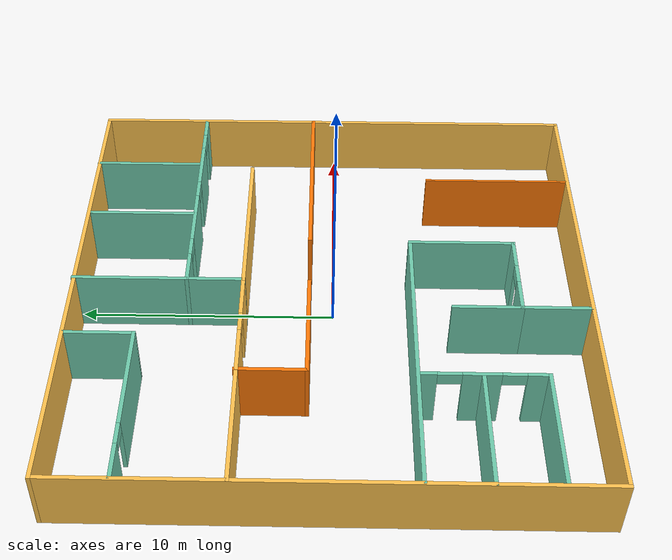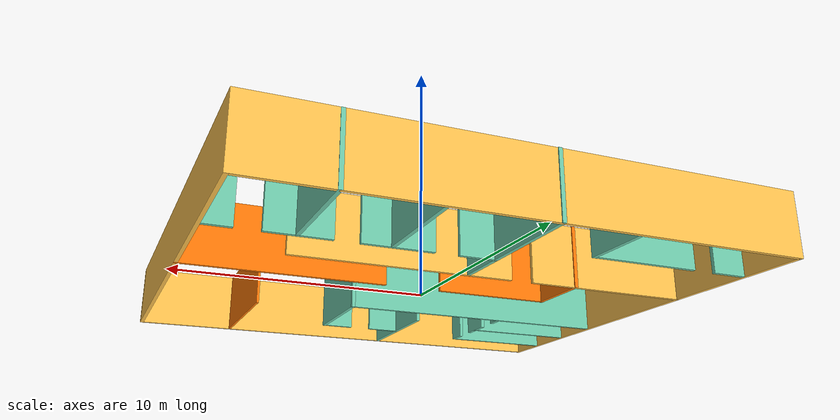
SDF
<?xml version='1.0'?>
<sdf version='1.6'>
  <model name='small_office'>
    <pose frame=''>-0.114 0.133313 0 0 -0 0</pose>
    <link name='Wall_11'>
      <collision name='Wall_11_Collision'>
        <geometry>
          <box>
            <size>20 0.15 2.5</size>
          </box>
        </geometry>
        <pose frame=''>0 0 1.25 0 -0 0</pose>
      </collision>
      <visual name='Wall_11_Visual'>
        <pose frame=''>0 0 1.25 0 -0 0</pose>
        <geometry>
          <box>
            <size>20 0.15 2.5</size>
          </box>
        </geometry>
        <material>
          <script>
            <uri>file://media/materials/scripts/gazebo.material</uri>
            <name>Gazebo/Grey</name>
          </script>
          <ambient>1 0.764706 0.305882 1</ambient>
        </material>
        <meta>
          <layer>0</layer>
        </meta>
      </visual>
      <pose frame=''>9.925 -0.020313 0 0 -0 -1.5708</pose>
    </link>
    <link name='Wall_13'>
      <collision name='Wall_13_Collision'>
        <geometry>
          <box>
            <size>6 0.1 2.5</size>
          </box>
        </geometry>
        <pose frame=''>0 0 1.25 0 -0 0</pose>
      </collision>
      <visual name='Wall_13_Visual'>
        <pose frame=''>0 0 1.25 0 -0 0</pose>
        <geometry>
          <box>
            <size>6 0.1 2.5</size>
          </box>
        </geometry>
        <material>
          <script>
            <uri>file://media/materials/scripts/gazebo.material</uri>
            <name>Gazebo/Grey</name>
          </script>
          <ambient>0.996078 0.47451 0.0196078 1</ambient>
        </material>
        <meta>
          <layer>0</layer>
        </meta>
      </visual>
      <pose frame=''>5.89991 -6.99585 0 0 -0 -1.5708</pose>
    </link>
    <link name='Wall_15'>
      <collision name='Wall_15_Collision'>
        <geometry>
          <box>
            <size>4.25 0.15 2.5</size>
          </box>
        </geometry>
        <pose frame=''>0 0 1.25 0 -0 0</pose>
      </collision>
      <visual name='Wall_15_Visual'>
        <pose frame=''>0 0 1.25 0 -0 0</pose>
        <geometry>
          <box>
            <size>4.25 0.15 2.5</size>
          </box>
        </geometry>
        <material>
          <script>
            <uri>file://media/materials/scripts/gazebo.material</uri>
            <name>Gazebo/Grey</name>
          </script>
          <ambient>0.435294 0.796078 0.67451 1</ambient>
        </material>
        <meta>
          <layer>0</layer>
        </meta>
      </visual>
      <pose frame=''>1.96698 -5.229 0 0 -0 1.5708</pose>
    </link>
    <link name='Wall_17'>
      <pose frame=''>0.146869 -7.279 0 0 -0 3.14159</pose>
      <visual name='Wall_17_Visual_0'>
        <pose frame=''>-1.19969 0 1.25 0 -0 0</pose>
        <geometry>
          <box>
            <size>1.35062 0.15 2.5</size>
          </box>
        </geometry>
        <material>
          <script>
            <uri>file://media/materials/scripts/gazebo.material</uri>
            <name>Gazebo/Grey</name>
          </script>
          <ambient>0.435294 0.796078 0.67451 1</ambient>
        </material>
        <meta>
          <layer>0</layer>
        </meta>
      </visual>
      <collision name='Wall_17_Collision_0'>
        <geometry>
          <box>
            <size>1.35062 0.15 2.5</size>
          </box>
        </geometry>
        <pose frame=''>-1.19969 0 1.25 0 -0 0</pose>
      </collision>
      <visual name='Wall_17_Visual_1'>
        <pose frame=''>1.12531 0 1.25 0 -0 0</pose>
        <geometry>
          <box>
            <size>1.49937 0.15 2.5</size>
          </box>
        </geometry>
        <material>
          <script>
            <uri>file://media/materials/scripts/gazebo.material</uri>
            <name>Gazebo/Grey</name>
          </script>
          <ambient>0.435294 0.796078 0.67451 1</ambient>
        </material>
        <meta>
          <layer>0</layer>
        </meta>
      </visual>
      <collision name='Wall_17_Collision_1'>
        <geometry>
          <box>
            <size>1.49937 0.15 2.5</size>
          </box>
        </geometry>
        <pose frame=''>1.12531 0 1.25 0 -0 0</pose>
      </collision>
      <visual name='Wall_17_Visual_2'>
        <pose frame=''>-0.074375 0 2.25 0 -0 0</pose>
        <geometry>
          <box>
            <size>0.9 0.15 0.5</size>
          </box>
        </geometry>
        <material>
          <script>
            <uri>file://media/materials/scripts/gazebo.material</uri>
            <name>Gazebo/Grey</name>
          </script>
          <ambient>0.435294 0.796078 0.67451 1</ambient>
        </material>
        <meta>
          <layer>0</layer>
        </meta>
      </visual>
      <collision name='Wall_17_Collision_2'>
        <geometry>
          <box>
            <size>0.9 0.15 0.5</size>
          </box>
        </geometry>
        <pose frame=''>-0.074375 0 2.25 0 -0 0</pose>
      </collision>
    </link>
    <link name='Wall_25'>
      <collision name='Wall_25_Collision'>
        <geometry>
          <box>
            <size>2.75 0.15 2.5</size>
          </box>
        </geometry>
        <pose frame=''>0 0 1.25 0 -0 0</pose>
      </collision>
      <visual name='Wall_25_Visual'>
        <pose frame=''>0 0 1.25 0 -0 0</pose>
        <geometry>
          <box>
            <size>2.75 0.15 2.5</size>
          </box>
        </geometry>
        <material>
          <script>
            <uri>file://media/materials/scripts/gazebo.material</uri>
            <name>Gazebo/Grey</name>
          </script>
          <ambient>0.435294 0.796078 0.67451 1</ambient>
        </material>
        <meta>
          <layer>0</layer>
        </meta>
      </visual>
      <pose frame=''>-1.65313 -8.579 0 0 -0 -1.5708</pose>
    </link>
    <link name='Wall_28'>
      <collision name='Wall_28_Collision'>
        <geometry>
          <box>
            <size>2.75 0.15 2.5</size>
          </box>
        </geometry>
        <pose frame=''>0 0 1.25 0 -0 0</pose>
      </collision>
      <visual name='Wall_28_Visual'>
        <pose frame=''>0 0 1.25 0 -0 0</pose>
        <geometry>
          <box>
            <size>2.75 0.15 2.5</size>
          </box>
        </geometry>
        <material>
          <script>
            <uri>file://media/materials/scripts/gazebo.material</uri>
            <name>Gazebo/Grey</name>
          </script>
          <ambient>0.435294 0.796078 0.67451 1</ambient>
        </material>
        <meta>
          <layer>0</layer>
        </meta>
      </visual>
      <pose frame=''>-1.65313 -5.979 0 0 -0 -1.5708</pose>
    </link>
    <link name='Wall_32'>
      <collision name='Wall_32_Collision'>
        <geometry>
          <box>
            <size>5 0.15 2.5</size>
          </box>
        </geometry>
        <pose frame=''>0 0 1.25 0 -0 0</pose>
      </collision>
      <visual name='Wall_32_Visual'>
        <pose frame=''>0 0 1.25 0 -0 0</pose>
        <geometry>
          <box>
            <size>5 0.15 2.5</size>
          </box>
        </geometry>
        <material>
          <script>
            <uri>file://media/materials/scripts/gazebo.material</uri>
            <name>Gazebo/Grey</name>
          </script>
          <ambient>0.435294 0.796078 0.67451 1</ambient>
        </material>
        <meta>
          <layer>0</layer>
        </meta>
      </visual>
      <pose frame=''>-7.49031 -7.91366 0 0 -0 3.14159</pose>
    </link>
    <link name='Wall_34'>
      <collision name='Wall_34_Collision'>
        <geometry>
          <box>
            <size>5 0.15 2.5</size>
          </box>
        </geometry>
        <pose frame=''>0 0 1.25 0 -0 0</pose>
      </collision>
      <visual name='Wall_34_Visual'>
        <pose frame=''>0 0 1.25 0 -0 0</pose>
        <geometry>
          <box>
            <size>5 0.15 2.5</size>
          </box>
        </geometry>
        <material>
          <script>
            <uri>file://media/materials/scripts/gazebo.material</uri>
            <name>Gazebo/Grey</name>
          </script>
          <ambient>0.435294 0.796078 0.67451 1</ambient>
        </material>
        <meta>
          <layer>0</layer>
        </meta>
      </visual>
      <pose frame=''>-7.49358 -5.53605 0 0 -0 0</pose>
    </link>
    <link name='Wall_39'>
      <collision name='Wall_39_Collision'>
        <geometry>
          <box>
            <size>12 0.15 2.5</size>
          </box>
        </geometry>
        <pose frame=''>0 0 1.25 0 -0 0</pose>
      </collision>
      <visual name='Wall_39_Visual'>
        <pose frame=''>0 0 1.25 0 -0 0</pose>
        <geometry>
          <box>
            <size>12 0.15 2.5</size>
          </box>
        </geometry>
        <material>
          <script>
            <uri>file://media/materials/scripts/gazebo.material</uri>
            <name>Gazebo/Grey</name>
          </script>
          <ambient>0.435294 0.796078 0.67451 1</ambient>
        </material>
        <meta>
          <layer>0</layer>
        </meta>
      </visual>
      <pose frame=''>-3.95802 -3.179 0 0 -0 3.14159</pose>
    </link>
    <link name='Wall_41'>
      <pose frame=''>-5.06531 -5.61366 0 0 -0 1.5708</pose>
      <visual name='Wall_41_Visual_0'>
        <pose frame=''>-1.92932 0 1.25 0 -0 0</pose>
        <geometry>
          <box>
            <size>0.89135 0.15 2.5</size>
          </box>
        </geometry>
        <material>
          <script>
            <uri>file://media/materials/scripts/gazebo.material</uri>
            <name>Gazebo/Grey</name>
          </script>
          <ambient>0.435294 0.796078 0.67451 1</ambient>
        </material>
        <meta>
          <layer>0</layer>
        </meta>
      </visual>
      <collision name='Wall_41_Collision_0'>
        <geometry>
          <box>
            <size>0.89135 0.15 2.5</size>
          </box>
        </geometry>
        <pose frame=''>-1.92932 0 1.25 0 -0 0</pose>
      </collision>
      <visual name='Wall_41_Visual_1'>
        <pose frame=''>0.13015 0 1.25 0 -0 0</pose>
        <geometry>
          <box>
            <size>1.4276 0.15 2.5</size>
          </box>
        </geometry>
        <material>
          <script>
            <uri>file://media/materials/scripts/gazebo.material</uri>
            <name>Gazebo/Grey</name>
          </script>
          <ambient>0.435294 0.796078 0.67451 1</ambient>
        </material>
        <meta>
          <layer>0</layer>
        </meta>
      </visual>
      <collision name='Wall_41_Collision_1'>
        <geometry>
          <box>
            <size>1.4276 0.15 2.5</size>
          </box>
        </geometry>
        <pose frame=''>0.13015 0 1.25 0 -0 0</pose>
      </collision>
      <visual name='Wall_41_Visual_2'>
        <pose frame=''>2.05947 0 1.25 0 -0 0</pose>
        <geometry>
          <box>
            <size>0.63105 0.15 2.5</size>
          </box>
        </geometry>
        <material>
          <script>
            <uri>file://media/materials/scripts/gazebo.material</uri>
            <name>Gazebo/Grey</name>
          </script>
          <ambient>0.435294 0.796078 0.67451 1</ambient>
        </material>
        <meta>
          <layer>0</layer>
        </meta>
      </visual>
      <collision name='Wall_41_Collision_2'>
        <geometry>
          <box>
            <size>0.63105 0.15 2.5</size>
          </box>
        </geometry>
        <pose frame=''>2.05947 0 1.25 0 -0 0</pose>
      </collision>
      <visual name='Wall_41_Visual_3'>
        <pose frame=''>-1.03365 0 2.25 0 -0 0</pose>
        <geometry>
          <box>
            <size>0.9 0.15 0.5</size>
          </box>
        </geometry>
        <material>
          <script>
            <uri>file://media/materials/scripts/gazebo.material</uri>
            <name>Gazebo/Grey</name>
          </script>
          <ambient>0.435294 0.796078 0.67451 1</ambient>
        </material>
        <meta>
          <layer>0</layer>
        </meta>
      </visual>
      <collision name='Wall_41_Collision_3'>
        <geometry>
          <box>
            <size>0.9 0.15 0.5</size>
          </box>
        </geometry>
        <pose frame=''>-1.03365 0 2.25 0 -0 0</pose>
      </collision>
      <visual name='Wall_41_Visual_4'>
        <pose frame=''>1.29395 0 2.25 0 -0 0</pose>
        <geometry>
          <box>
            <size>0.9 0.15 0.5</size>
          </box>
        </geometry>
        <material>
          <script>
            <uri>file://media/materials/scripts/gazebo.material</uri>
            <name>Gazebo/Grey</name>
          </script>
          <ambient>0.435294 0.796078 0.67451 1</ambient>
        </material>
        <meta>
          <layer>0</layer>
        </meta>
      </visual>
      <collision name='Wall_41_Collision_4'>
        <geometry>
          <box>
            <size>0.9 0.15 0.5</size>
          </box>
        </geometry>
        <pose frame=''>1.29395 0 2.25 0 -0 0</pose>
      </collision>
    </link>
    <link name='Wall_43'>
      <pose frame=''>-6.5641 7.23219 0 0 -0 0</pose>
      <visual name='Wall_43_Visual_0'>
        <pose frame=''>-2.63259 0 1.25 0 -0 0</pose>
        <geometry>
          <box>
            <size>1.48482 0.15 2.5</size>
          </box>
        </geometry>
        <material>
          <script>
            <uri>file://media/materials/scripts/gazebo.material</uri>
            <name>Gazebo/Grey</name>
          </script>
          <ambient>0.435294 0.796078 0.67451 1</ambient>
        </material>
        <meta>
          <layer>0</layer>
        </meta>
      </visual>
      <collision name='Wall_43_Collision_0'>
        <geometry>
          <box>
            <size>1.48482 0.15 2.5</size>
          </box>
        </geometry>
        <pose frame=''>-2.63259 0 1.25 0 -0 0</pose>
      </collision>
      <visual name='Wall_43_Visual_1'>
        <pose frame=''>1.19241 0 1.25 0 -0 0</pose>
        <geometry>
          <box>
            <size>4.36518 0.15 2.5</size>
          </box>
        </geometry>
        <material>
          <script>
            <uri>file://media/materials/scripts/gazebo.material</uri>
            <name>Gazebo/Grey</name>
          </script>
          <ambient>0.435294 0.796078 0.67451 1</ambient>
        </material>
        <meta>
          <layer>0</layer>
        </meta>
      </visual>
      <collision name='Wall_43_Collision_1'>
        <geometry>
          <box>
            <size>4.36518 0.15 2.5</size>
          </box>
        </geometry>
        <pose frame=''>1.19241 0 1.25 0 -0 0</pose>
      </collision>
      <visual name='Wall_43_Visual_2'>
        <pose frame=''>-1.44018 0 2.25 0 -0 0</pose>
        <geometry>
          <box>
            <size>0.9 0.15 0.5</size>
          </box>
        </geometry>
        <material>
          <script>
            <uri>file://media/materials/scripts/gazebo.material</uri>
            <name>Gazebo/Grey</name>
          </script>
          <ambient>0.435294 0.796078 0.67451 1</ambient>
        </material>
        <meta>
          <layer>0</layer>
        </meta>
      </visual>
      <collision name='Wall_43_Collision_2'>
        <geometry>
          <box>
            <size>0.9 0.15 0.5</size>
          </box>
        </geometry>
        <pose frame=''>-1.44018 0 2.25 0 -0 0</pose>
      </collision>
    </link>
    <link name='Wall_44'>
      <collision name='Wall_44_Collision'>
        <geometry>
          <box>
            <size>2.75 0.15 2.5</size>
          </box>
        </geometry>
        <pose frame=''>0 0 1.25 0 -0 0</pose>
      </collision>
      <visual name='Wall_44_Visual'>
        <pose frame=''>0 0 1.25 0 -0 0</pose>
        <geometry>
          <box>
            <size>2.75 0.15 2.5</size>
          </box>
        </geometry>
        <material>
          <script>
            <uri>file://media/materials/scripts/gazebo.material</uri>
            <name>Gazebo/Grey</name>
          </script>
          <ambient>0.435294 0.796078 0.67451 1</ambient>
        </material>
        <meta>
          <layer>0</layer>
        </meta>
      </visual>
      <pose frame=''>-3.2641 8.53219 0 0 -0 1.5708</pose>
    </link>
    <link name='Wall_47'>
      <pose frame=''>-5.108 3.34531 0 0 -0 0</pose>
      <visual name='Wall_47_Visual_0'>
        <pose frame=''>-1.40255 0 1.25 0 -0 0</pose>
        <geometry>
          <box>
            <size>6.9449 0.15 2.5</size>
          </box>
        </geometry>
        <material>
          <script>
            <uri>file://media/materials/scripts/gazebo.material</uri>
            <name>Gazebo/Grey</name>
          </script>
          <ambient>1 0.764706 0.305882 1</ambient>
        </material>
        <meta>
          <layer>0</layer>
        </meta>
      </visual>
      <collision name='Wall_47_Collision_0'>
        <geometry>
          <box>
            <size>6.9449 0.15 2.5</size>
          </box>
        </geometry>
        <pose frame=''>-1.40255 0 1.25 0 -0 0</pose>
      </collision>
      <visual name='Wall_47_Visual_1'>
        <pose frame=''>3.92245 0 1.25 0 -0 0</pose>
        <geometry>
          <box>
            <size>1.9051 0.15 2.5</size>
          </box>
        </geometry>
        <material>
          <script>
            <uri>file://media/materials/scripts/gazebo.material</uri>
            <name>Gazebo/Grey</name>
          </script>
          <ambient>1 0.764706 0.305882 1</ambient>
        </material>
        <meta>
          <layer>0</layer>
        </meta>
      </visual>
      <collision name='Wall_47_Collision_1'>
        <geometry>
          <box>
            <size>1.9051 0.15 2.5</size>
          </box>
        </geometry>
        <pose frame=''>3.92245 0 1.25 0 -0 0</pose>
      </collision>
      <visual name='Wall_47_Visual_2'>
        <pose frame=''>2.5199 0 2.25 0 -0 0</pose>
        <geometry>
          <box>
            <size>0.9 0.15 0.5</size>
          </box>
        </geometry>
        <material>
          <script>
            <uri>file://media/materials/scripts/gazebo.material</uri>
            <name>Gazebo/Grey</name>
          </script>
          <ambient>1 0.764706 0.305882 1</ambient>
        </material>
        <meta>
          <layer>0</layer>
        </meta>
      </visual>
      <collision name='Wall_47_Collision_2'>
        <geometry>
          <box>
            <size>0.9 0.15 0.5</size>
          </box>
        </geometry>
        <pose frame=''>2.5199 0 2.25 0 -0 0</pose>
      </collision>
    </link>
    <link name='Wall_48'>
      <collision name='Wall_48_Collision'>
        <geometry>
          <box>
            <size>6.75 0.15 2.5</size>
          </box>
        </geometry>
        <pose frame=''>0 0 1.25 0 -0 0</pose>
      </collision>
      <visual name='Wall_48_Visual'>
        <pose frame=''>0 0 1.25 0 -0 0</pose>
        <geometry>
          <box>
            <size>6.75 0.15 2.5</size>
          </box>
        </geometry>
        <material>
          <script>
            <uri>file://media/materials/scripts/gazebo.material</uri>
            <name>Gazebo/Grey</name>
          </script>
          <ambient>0.435294 0.796078 0.67451 1</ambient>
        </material>
        <meta>
          <layer>0</layer>
        </meta>
      </visual>
      <pose frame=''>-0.307996 6.64531 0 0 -0 1.5708</pose>
    </link>
    <link name='Wall_5'>
      <collision name='Wall_5_Collision'>
        <geometry>
          <box>
            <size>20 0.15 2.5</size>
          </box>
        </geometry>
        <pose frame=''>0 0 1.25 0 -0 0</pose>
      </collision>
      <visual name='Wall_5_Visual'>
        <pose frame=''>0 0 1.25 0 -0 0</pose>
        <geometry>
          <box>
            <size>20 0.15 2.5</size>
          </box>
        </geometry>
        <material>
          <script>
            <uri>file://media/materials/scripts/gazebo.material</uri>
            <name>Gazebo/Grey</name>
          </script>
          <ambient>1 0.764706 0.305882 1</ambient>
        </material>
        <meta>
          <layer>0</layer>
        </meta>
      </visual>
      <pose frame=''>-9.925 -0.020313 0 0 -0 -1.5708</pose>
    </link>
    <link name='Wall_51'>
      <collision name='Wall_51_Collision'>
        <geometry>
          <box>
            <size>4.75 0.15 2.5</size>
          </box>
        </geometry>
        <pose frame=''>0 0 1.25 0 -0 0</pose>
      </collision>
      <visual name='Wall_51_Visual'>
        <pose frame=''>0 0 1.25 0 -0 0</pose>
        <geometry>
          <box>
            <size>4.75 0.15 2.5</size>
          </box>
        </geometry>
        <material>
          <script>
            <uri>file://media/materials/scripts/gazebo.material</uri>
            <name>Gazebo/Grey</name>
          </script>
          <ambient>0.996078 0.47451 0.0196078 1</ambient>
        </material>
        <meta>
          <layer>0</layer>
        </meta>
      </visual>
      <pose frame=''>-2.67646 0.791838 0 0 -0 0</pose>
    </link>
    <link name='Wall_53'>
      <collision name='Wall_53_Collision'>
        <geometry>
          <box>
            <size>8 0.15 2.5</size>
          </box>
        </geometry>
        <pose frame=''>0 0 1.25 0 -0 0</pose>
      </collision>
      <visual name='Wall_53_Visual'>
        <pose frame=''>0 0 1.25 0 -0 0</pose>
        <geometry>
          <box>
            <size>8 0.15 2.5</size>
          </box>
        </geometry>
        <material>
          <script>
            <uri>file://media/materials/scripts/gazebo.material</uri>
            <name>Gazebo/Grey</name>
          </script>
          <ambient>0.996078 0.47451 0.0196078 1</ambient>
        </material>
        <meta>
          <layer>0</layer>
        </meta>
      </visual>
      <pose frame=''>5.99489 0.810335 0 0 -0 0</pose>
    </link>
    <link name='Wall_60'>
      <collision name='Wall_60_Collision'>
        <geometry>
          <box>
            <size>2.75 0.15 2.5</size>
          </box>
        </geometry>
        <pose frame=''>0 0 1.25 0 -0 0</pose>
      </collision>
      <visual name='Wall_60_Visual'>
        <pose frame=''>0 0 1.25 0 -0 0</pose>
        <geometry>
          <box>
            <size>2.75 0.15 2.5</size>
          </box>
        </geometry>
        <material>
          <script>
            <uri>file://media/materials/scripts/gazebo.material</uri>
            <name>Gazebo/Grey</name>
          </script>
          <ambient>0.996078 0.47451 0.0196078 1</ambient>
        </material>
        <meta>
          <layer>0</layer>
        </meta>
      </visual>
      <pose frame=''>-4.97646 2.09184 0 0 -0 1.5708</pose>
    </link>
    <link name='Wall_65'>
      <pose frame=''>4.73757 5.53645 0 0 -0 0</pose>
      <visual name='Wall_65_Visual_0'>
        <pose frame=''>-4.3785 0 1.25 0 -0 0</pose>
        <geometry>
          <box>
            <size>1.493 0.15 2.5</size>
          </box>
        </geometry>
        <material>
          <script>
            <uri>file://media/materials/scripts/gazebo.material</uri>
            <name>Gazebo/Grey</name>
          </script>
          <ambient>0.435294 0.796078 0.67451 1</ambient>
        </material>
        <meta>
          <layer>0</layer>
        </meta>
      </visual>
      <collision name='Wall_65_Collision_0'>
        <geometry>
          <box>
            <size>1.493 0.15 2.5</size>
          </box>
        </geometry>
        <pose frame=''>-4.3785 0 1.25 0 -0 0</pose>
      </collision>
      <visual name='Wall_65_Visual_1'>
        <pose frame=''>-1.38981 0 1.25 0 -0 0</pose>
        <geometry>
          <box>
            <size>2.68438 0.15 2.5</size>
          </box>
        </geometry>
        <material>
          <script>
            <uri>file://media/materials/scripts/gazebo.material</uri>
            <name>Gazebo/Grey</name>
          </script>
          <ambient>0.435294 0.796078 0.67451 1</ambient>
        </material>
        <meta>
          <layer>0</layer>
        </meta>
      </visual>
      <collision name='Wall_65_Collision_1'>
        <geometry>
          <box>
            <size>2.68438 0.15 2.5</size>
          </box>
        </geometry>
        <pose frame=''>-1.38981 0 1.25 0 -0 0</pose>
      </collision>
      <visual name='Wall_65_Visual_2'>
        <pose frame=''>2.03308 0 1.25 0 -0 0</pose>
        <geometry>
          <box>
            <size>2.36142 0.15 2.5</size>
          </box>
        </geometry>
        <material>
          <script>
            <uri>file://media/materials/scripts/gazebo.material</uri>
            <name>Gazebo/Grey</name>
          </script>
          <ambient>0.435294 0.796078 0.67451 1</ambient>
        </material>
        <meta>
          <layer>0</layer>
        </meta>
      </visual>
      <collision name='Wall_65_Collision_2'>
        <geometry>
          <box>
            <size>2.36142 0.15 2.5</size>
          </box>
        </geometry>
        <pose frame=''>2.03308 0 1.25 0 -0 0</pose>
      </collision>
      <visual name='Wall_65_Visual_3'>
        <pose frame=''>4.61939 0 1.25 0 -0 0</pose>
        <geometry>
          <box>
            <size>1.01121 0.15 2.5</size>
          </box>
        </geometry>
        <material>
          <script>
            <uri>file://media/materials/scripts/gazebo.material</uri>
            <name>Gazebo/Grey</name>
          </script>
          <ambient>0.435294 0.796078 0.67451 1</ambient>
        </material>
        <meta>
          <layer>0</layer>
        </meta>
      </visual>
      <collision name='Wall_65_Collision_3'>
        <geometry>
          <box>
            <size>1.01121 0.15 2.5</size>
          </box>
        </geometry>
        <pose frame=''>4.61939 0 1.25 0 -0 0</pose>
      </collision>
      <visual name='Wall_65_Visual_4'>
        <pose frame=''>-3.182 0 2.25 0 -0 0</pose>
        <geometry>
          <box>
            <size>0.9 0.15 0.5</size>
          </box>
        </geometry>
        <material>
          <script>
            <uri>file://media/materials/scripts/gazebo.material</uri>
            <name>Gazebo/Grey</name>
          </script>
          <ambient>0.435294 0.796078 0.67451 1</ambient>
        </material>
        <meta>
          <layer>0</layer>
        </meta>
      </visual>
      <collision name='Wall_65_Collision_4'>
        <geometry>
          <box>
            <size>0.9 0.15 0.5</size>
          </box>
        </geometry>
        <pose frame=''>-3.182 0 2.25 0 -0 0</pose>
      </collision>
      <visual name='Wall_65_Visual_5'>
        <pose frame=''>0.402374 0 2.25 0 -0 0</pose>
        <geometry>
          <box>
            <size>0.9 0.15 0.5</size>
          </box>
        </geometry>
        <material>
          <script>
            <uri>file://media/materials/scripts/gazebo.material</uri>
            <name>Gazebo/Grey</name>
          </script>
          <ambient>0.435294 0.796078 0.67451 1</ambient>
        </material>
        <meta>
          <layer>0</layer>
        </meta>
      </visual>
      <collision name='Wall_65_Collision_5'>
        <geometry>
          <box>
            <size>0.9 0.15 0.5</size>
          </box>
        </geometry>
        <pose frame=''>0.402374 0 2.25 0 -0 0</pose>
      </collision>
      <visual name='Wall_65_Visual_6'>
        <pose frame=''>3.66379 0 2.25 0 -0 0</pose>
        <geometry>
          <box>
            <size>0.9 0.15 0.5</size>
          </box>
        </geometry>
        <material>
          <script>
            <uri>file://media/materials/scripts/gazebo.material</uri>
            <name>Gazebo/Grey</name>
          </script>
          <ambient>0.435294 0.796078 0.67451 1</ambient>
        </material>
        <meta>
          <layer>0</layer>
        </meta>
      </visual>
      <collision name='Wall_65_Collision_6'>
        <geometry>
          <box>
            <size>0.9 0.15 0.5</size>
          </box>
        </geometry>
        <pose frame=''>3.66379 0 2.25 0 -0 0</pose>
      </collision>
    </link>
    <link name='Wall_67'>
      <collision name='Wall_67_Collision'>
        <geometry>
          <box>
            <size>7 0.15 2.5</size>
          </box>
        </geometry>
        <pose frame=''>0 0 1.25 0 -0 0</pose>
      </collision>
      <visual name='Wall_67_Visual'>
        <pose frame=''>0 0 1.25 0 -0 0</pose>
        <geometry>
          <box>
            <size>7 0.15 2.5</size>
          </box>
        </geometry>
        <material>
          <script>
            <uri>file://media/materials/scripts/gazebo.material</uri>
            <name>Gazebo/Grey</name>
          </script>
          <ambient>1 0.764706 0.305882 1</ambient>
        </material>
        <meta>
          <layer>0</layer>
        </meta>
      </visual>
      <pose frame=''>3.117 3.34531 0 0 -0 0</pose>
    </link>
    <link name='Wall_69'>
      <collision name='Wall_69_Collision'>
        <geometry>
          <box>
            <size>4.25 0.15 2.5</size>
          </box>
        </geometry>
        <pose frame=''>0 0 1.25 0 -0 0</pose>
      </collision>
      <visual name='Wall_69_Visual'>
        <pose frame=''>0 0 1.25 0 -0 0</pose>
        <geometry>
          <box>
            <size>4.25 0.15 2.5</size>
          </box>
        </geometry>
        <material>
          <script>
            <uri>file://media/materials/scripts/gazebo.material</uri>
            <name>Gazebo/Grey</name>
          </script>
          <ambient>0.435294 0.796078 0.67451 1</ambient>
        </material>
        <meta>
          <layer>0</layer>
        </meta>
      </visual>
      <pose frame=''>3.55687 7.70224 0 0 -0 1.5708</pose>
    </link>
    <link name='Wall_7'>
      <collision name='Wall_7_Collision'>
        <geometry>
          <box>
            <size>20 0.15 2.5</size>
          </box>
        </geometry>
        <pose frame=''>0 0 1.25 0 -0 0</pose>
      </collision>
      <visual name='Wall_7_Visual'>
        <pose frame=''>0 0 1.25 0 -0 0</pose>
        <geometry>
          <box>
            <size>20 0.15 2.5</size>
          </box>
        </geometry>
        <material>
          <script>
            <uri>file://media/materials/scripts/gazebo.material</uri>
            <name>Gazebo/Grey</name>
          </script>
          <ambient>1 0.764706 0.305882 1</ambient>
        </material>
        <meta>
          <layer>0</layer>
        </meta>
      </visual>
      <pose frame=''>-0 -9.94531 0 0 -0 0</pose>
    </link>
    <link name='Wall_73'>
      <collision name='Wall_73_Collision'>
        <geometry>
          <box>
            <size>4.5 0.15 2.5</size>
          </box>
        </geometry>
        <pose frame=''>0 0 1.25 0 -0 0</pose>
      </collision>
      <visual name='Wall_73_Visual'>
        <pose frame=''>0 0 1.25 0 -0 0</pose>
        <geometry>
          <box>
            <size>4.5 0.15 2.5</size>
          </box>
        </geometry>
        <material>
          <script>
            <uri>file://media/materials/scripts/gazebo.material</uri>
            <name>Gazebo/Grey</name>
          </script>
          <ambient>0.435294 0.796078 0.67451 1</ambient>
        </material>
        <meta>
          <layer>0</layer>
        </meta>
      </visual>
      <pose frame=''>6.81213 7.74342 0 0 -0 1.5708</pose>
    </link>
    <link name='Wall_9'>
      <collision name='Wall_9_Collision'>
        <geometry>
          <box>
            <size>20 0.15 2.5</size>
          </box>
        </geometry>
        <pose frame=''>0 0 1.25 0 -0 0</pose>
      </collision>
      <visual name='Wall_9_Visual'>
        <pose frame=''>0 0 1.25 0 -0 0</pose>
        <geometry>
          <box>
            <size>20 0.15 2.5</size>
          </box>
        </geometry>
        <material>
          <script>
            <uri>file://media/materials/scripts/gazebo.material</uri>
            <name>Gazebo/Grey</name>
          </script>
          <ambient>1 0.764706 0.305882 1</ambient>
        </material>
        <meta>
          <layer>0</layer>
        </meta>
      </visual>
      <pose frame=''>-0 9.90469 0 0 -0 0</pose>
    </link>
    <static>1</static>
  </model>
</sdf>
